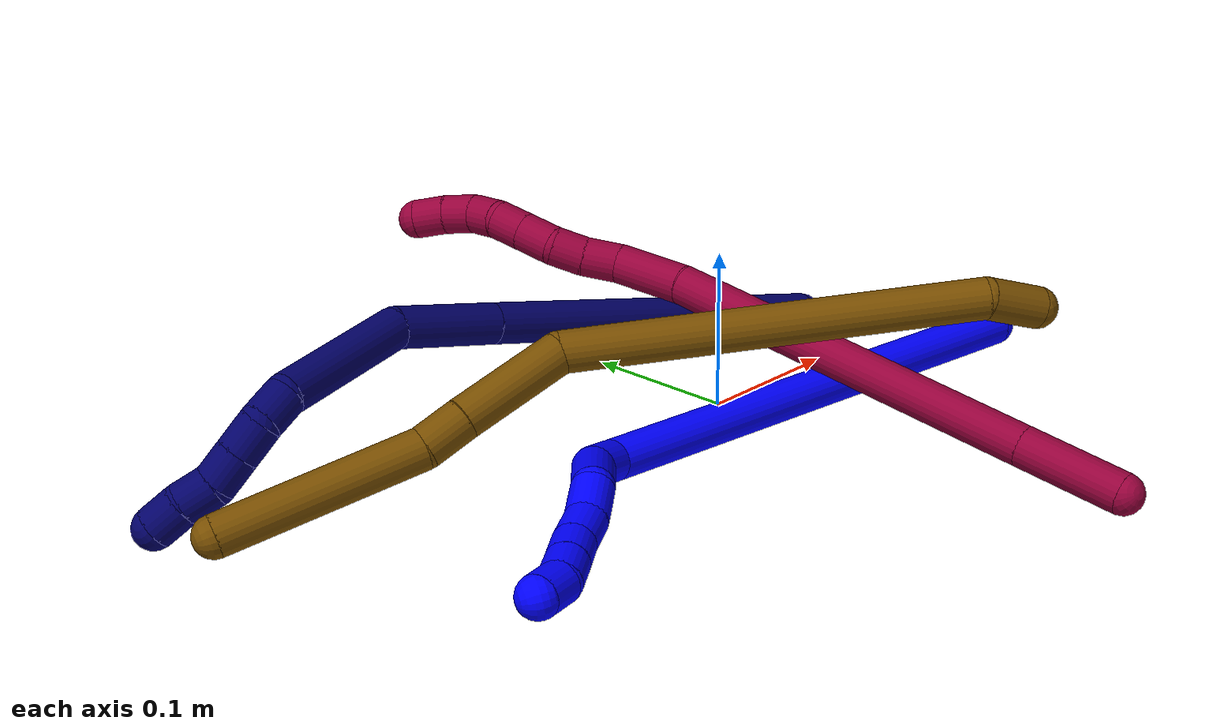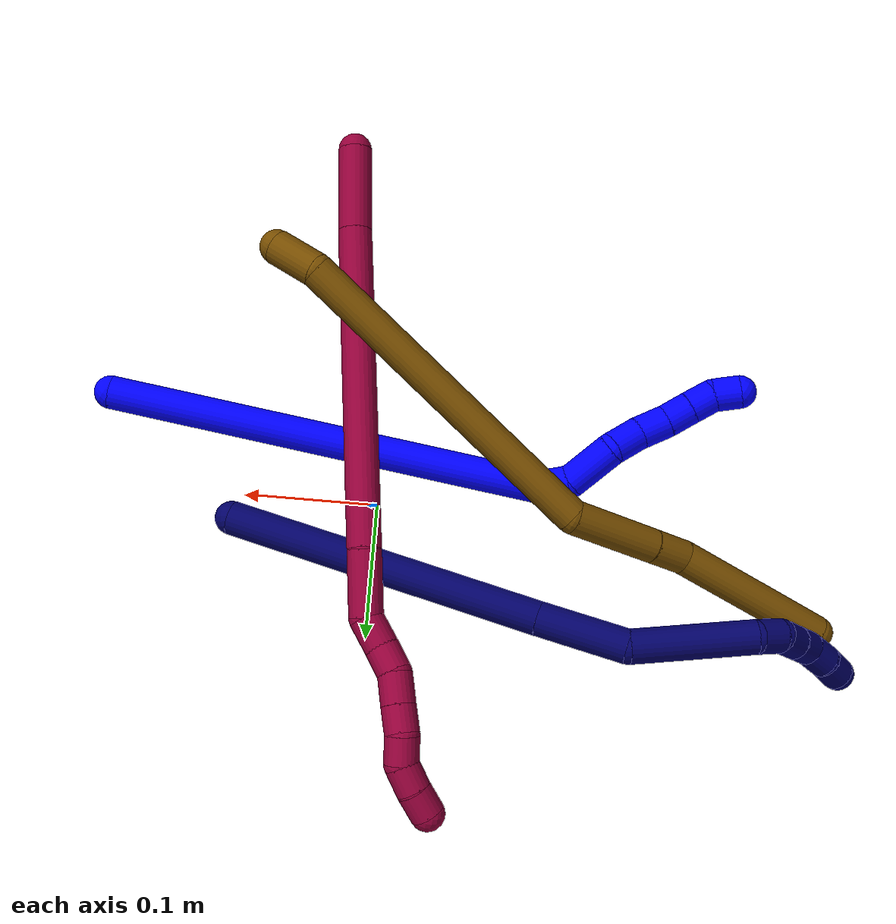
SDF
<sdf version="1.7">
 <world name="default">
  <model name="1">
   <static>0</static>
   <link name="1">
    <collision name="collision-cylinder-e_1_1_4">
     <pose>-0.064321 0.016195 0.150427 -0.107246 -0.401981 0.021871</pose>
     <geometry><cylinder><radius>0.0125</radius><length>0.328802</length></cylinder></geometry>
     <surface>
      <friction><ode><mu>1.16</mu><mu2>1.16</mu2><slip1>0</slip1><slip2>0</slip2></ode></friction>
      <contact><ode><kp>1e+06</kp><kd>1</kd><max_vel>0</max_vel><min_depth>0.001</min_depth></ode></contact>
     </surface>
    </collision>
    <visual name="visual-cylinder-e_1_1_4">
     <pose>-0.064321 0.016195 0.150427 -0.107246 -0.401981 0.021871</pose>
     <geometry><cylinder><radius>0.0125</radius><length>0.328802</length></cylinder></geometry>
     <material><ambient>0 0 1 1</ambient></material>
    </visual>
    <collision name="collision-cylinder-e_2_4_5">
     <pose>-0.13742 0.033699 0.308421 -0.171369 -0.852096 0.077927</pose>
     <geometry><cylinder><radius>0.0125</radius><length>0.023328</length></cylinder></geometry>
     <surface>
      <friction><ode><mu>1.16</mu><mu2>1.16</mu2><slip1>0</slip1><slip2>0</slip2></ode></friction>
      <contact><ode><kp>1e+06</kp><kd>1</kd><max_vel>0</max_vel><min_depth>0.001</min_depth></ode></contact>
     </surface>
    </collision>
    <visual name="visual-cylinder-e_2_4_5">
     <pose>-0.13742 0.033699 0.308421 -0.171369 -0.852096 0.077927</pose>
     <geometry><cylinder><radius>0.0125</radius><length>0.023328</length></cylinder></geometry>
     <material><ambient>0 0 1 1</ambient></material>
    </visual>
    <collision name="collision-cylinder-e_3_5_6">
     <pose>-0.16366 0.042329 0.320978 -0.972533 -1.1013 0.627671</pose>
     <geometry><cylinder><radius>0.0125</radius><length>0.039158</length></cylinder></geometry>
     <surface>
      <friction><ode><mu>1.16</mu><mu2>1.16</mu2><slip1>0</slip1><slip2>0</slip2></ode></friction>
      <contact><ode><kp>1e+06</kp><kd>1</kd><max_vel>0</max_vel><min_depth>0.001</min_depth></ode></contact>
     </surface>
    </collision>
    <visual name="visual-cylinder-e_3_5_6">
     <pose>-0.16366 0.042329 0.320978 -0.972533 -1.1013 0.627671</pose>
     <geometry><cylinder><radius>0.0125</radius><length>0.039158</length></cylinder></geometry>
     <material><ambient>0 0 1 1</ambient></material>
    </visual>
    <collision name="collision-cylinder-e_4_6_7">
     <pose>-0.188124 0.058375 0.331561 -1.00074 -0.594162 0.331711</pose>
     <geometry><cylinder><radius>0.0125</radius><length>0.025019</length></cylinder></geometry>
     <surface>
      <friction><ode><mu>1.16</mu><mu2>1.16</mu2><slip1>0</slip1><slip2>0</slip2></ode></friction>
      <contact><ode><kp>1e+06</kp><kd>1</kd><max_vel>0</max_vel><min_depth>0.001</min_depth></ode></contact>
     </surface>
    </collision>
    <visual name="visual-cylinder-e_4_6_7">
     <pose>-0.188124 0.058375 0.331561 -1.00074 -0.594162 0.331711</pose>
     <geometry><cylinder><radius>0.0125</radius><length>0.025019</length></cylinder></geometry>
     <material><ambient>0 0 1 1</ambient></material>
    </visual>
    <collision name="collision-cylinder-e_5_7_8">
     <pose>-0.203161 0.072715 0.343324 -0.738292 -0.766678 0.309555</pose>
     <geometry><cylinder><radius>0.0125</radius><length>0.023162</length></cylinder></geometry>
     <surface>
      <friction><ode><mu>1.16</mu><mu2>1.16</mu2><slip1>0</slip1><slip2>0</slip2></ode></friction>
      <contact><ode><kp>1e+06</kp><kd>1</kd><max_vel>0</max_vel><min_depth>0.001</min_depth></ode></contact>
     </surface>
    </collision>
    <visual name="visual-cylinder-e_5_7_8">
     <pose>-0.203161 0.072715 0.343324 -0.738292 -0.766678 0.309555</pose>
     <geometry><cylinder><radius>0.0125</radius><length>0.023162</length></cylinder></geometry>
     <material><ambient>0 0 1 1</ambient></material>
    </visual>
    <collision name="collision-cylinder-e_6_8_9">
     <pose>-0.218913 0.083216 0.353907 -0.836136 -0.864416 0.404271</pose>
     <geometry><cylinder><radius>0.0125</radius><length>0.020293</length></cylinder></geometry>
     <surface>
      <friction><ode><mu>1.16</mu><mu2>1.16</mu2><slip1>0</slip1><slip2>0</slip2></ode></friction>
      <contact><ode><kp>1e+06</kp><kd>1</kd><max_vel>0</max_vel><min_depth>0.001</min_depth></ode></contact>
     </surface>
    </collision>
    <visual name="visual-cylinder-e_6_8_9">
     <pose>-0.218913 0.083216 0.353907 -0.836136 -0.864416 0.404271</pose>
     <geometry><cylinder><radius>0.0125</radius><length>0.020293</length></cylinder></geometry>
     <material><ambient>0 0 1 1</ambient></material>
    </visual>
    <collision name="collision-cylinder-e_7_9_10">
     <pose>-0.234149 0.092933 0.362853 -0.817434 -0.848535 0.386389</pose>
     <geometry><cylinder><radius>0.0125</radius><length>0.020036</length></cylinder></geometry>
     <surface>
      <friction><ode><mu>1.16</mu><mu2>1.16</mu2><slip1>0</slip1><slip2>0</slip2></ode></friction>
      <contact><ode><kp>1e+06</kp><kd>1</kd><max_vel>0</max_vel><min_depth>0.001</min_depth></ode></contact>
     </surface>
    </collision>
    <visual name="visual-cylinder-e_7_9_10">
     <pose>-0.234149 0.092933 0.362853 -0.817434 -0.848535 0.386389</pose>
     <geometry><cylinder><radius>0.0125</radius><length>0.020036</length></cylinder></geometry>
     <material><ambient>0 0 1 1</ambient></material>
    </visual>
    <collision name="collision-cylinder-e_8_10_2">
     <pose>-0.248167 0.100206 0.374718 -0.321408 -0.699254 0.118069</pose>
     <geometry><cylinder><radius>0.0125</radius><length>0.020202</length></cylinder></geometry>
     <surface>
      <friction><ode><mu>1.16</mu><mu2>1.16</mu2><slip1>0</slip1><slip2>0</slip2></ode></friction>
      <contact><ode><kp>1e+06</kp><kd>1</kd><max_vel>0</max_vel><min_depth>0.001</min_depth></ode></contact>
     </surface>
    </collision>
    <visual name="visual-cylinder-e_8_10_2">
     <pose>-0.248167 0.100206 0.374718 -0.321408 -0.699254 0.118069</pose>
     <geometry><cylinder><radius>0.0125</radius><length>0.020202</length></cylinder></geometry>
     <material><ambient>0 0 1 1</ambient></material>
    </visual>
    <collision name="collision-sphere-2">
     <pose>-0.254668 0.102648 0.382053 0 -0 0</pose>
     <geometry><sphere><radius>0.0125</radius></sphere></geometry>
     <surface>
      <friction><ode><mu>1.16</mu><mu2>1.16</mu2><slip1>0</slip1><slip2>0</slip2></ode></friction>
      <contact><ode><kp>1e+06</kp><kd>1</kd><max_vel>0</max_vel><min_depth>0.001</min_depth></ode></contact>
     </surface>
    </collision>
    <visual name="visual-sphere-2">
     <pose>-0.254668 0.102648 0.382053 0 -0 0</pose>
     <geometry><sphere><radius>0.0125</radius></sphere></geometry>
     <material><ambient>0 0 1 1</ambient></material>
    </visual>
    <collision name="collision-sphere-10">
     <pose>-0.241665 0.097764 0.367383 0 -0 0</pose>
     <geometry><sphere><radius>0.0125</radius></sphere></geometry>
     <surface>
      <friction><ode><mu>1.16</mu><mu2>1.16</mu2><slip1>0</slip1><slip2>0</slip2></ode></friction>
      <contact><ode><kp>1e+06</kp><kd>1</kd><max_vel>0</max_vel><min_depth>0.001</min_depth></ode></contact>
     </surface>
    </collision>
    <visual name="visual-sphere-10">
     <pose>-0.241665 0.097764 0.367383 0 -0 0</pose>
     <geometry><sphere><radius>0.0125</radius></sphere></geometry>
     <material><ambient>0 0 1 1</ambient></material>
    </visual>
    <collision name="collision-sphere-9">
     <pose>-0.226632 0.088103 0.358322 0 -0 0</pose>
     <geometry><sphere><radius>0.0125</radius></sphere></geometry>
     <surface>
      <friction><ode><mu>1.16</mu><mu2>1.16</mu2><slip1>0</slip1><slip2>0</slip2></ode></friction>
      <contact><ode><kp>1e+06</kp><kd>1</kd><max_vel>0</max_vel><min_depth>0.001</min_depth></ode></contact>
     </surface>
    </collision>
    <visual name="visual-sphere-9">
     <pose>-0.226632 0.088103 0.358322 0 -0 0</pose>
     <geometry><sphere><radius>0.0125</radius></sphere></geometry>
     <material><ambient>0 0 1 1</ambient></material>
    </visual>
    <collision name="collision-sphere-4">
     <pose>-0.128641 0.03239 0.300854 0 -0 0</pose>
     <geometry><sphere><radius>0.0125</radius></sphere></geometry>
     <surface>
      <friction><ode><mu>1.16</mu><mu2>1.16</mu2><slip1>0</slip1><slip2>0</slip2></ode></friction>
      <contact><ode><kp>1e+06</kp><kd>1</kd><max_vel>0</max_vel><min_depth>0.001</min_depth></ode></contact>
     </surface>
    </collision>
    <visual name="visual-sphere-4">
     <pose>-0.128641 0.03239 0.300854 0 -0 0</pose>
     <geometry><sphere><radius>0.0125</radius></sphere></geometry>
     <material><ambient>0 0 1 1</ambient></material>
    </visual>
    <collision name="collision-sphere-1">
     <geometry><sphere><radius>0.0125</radius></sphere></geometry>
     <surface>
      <friction><ode><mu>1.16</mu><mu2>1.16</mu2><slip1>0</slip1><slip2>0</slip2></ode></friction>
      <contact><ode><kp>1e+06</kp><kd>1</kd><max_vel>0</max_vel><min_depth>0.001</min_depth></ode></contact>
     </surface>
    </collision>
    <visual name="visual-sphere-1">
     <geometry><sphere><radius>0.0125</radius></sphere></geometry>
     <material><ambient>0 0 1 1</ambient></material>
    </visual>
    <collision name="collision-sphere-8">
     <pose>-0.211195 0.078328 0.349493 0 -0 0</pose>
     <geometry><sphere><radius>0.0125</radius></sphere></geometry>
     <surface>
      <friction><ode><mu>1.16</mu><mu2>1.16</mu2><slip1>0</slip1><slip2>0</slip2></ode></friction>
      <contact><ode><kp>1e+06</kp><kd>1</kd><max_vel>0</max_vel><min_depth>0.001</min_depth></ode></contact>
     </surface>
    </collision>
    <visual name="visual-sphere-8">
     <pose>-0.211195 0.078328 0.349493 0 -0 0</pose>
     <geometry><sphere><radius>0.0125</radius></sphere></geometry>
     <material><ambient>0 0 1 1</ambient></material>
    </visual>
    <collision name="collision-sphere-5">
     <pose>-0.1462 0.035009 0.315989 0 -0 0</pose>
     <geometry><sphere><radius>0.0125</radius></sphere></geometry>
     <surface>
      <friction><ode><mu>1.16</mu><mu2>1.16</mu2><slip1>0</slip1><slip2>0</slip2></ode></friction>
      <contact><ode><kp>1e+06</kp><kd>1</kd><max_vel>0</max_vel><min_depth>0.001</min_depth></ode></contact>
     </surface>
    </collision>
    <visual name="visual-sphere-5">
     <pose>-0.1462 0.035009 0.315989 0 -0 0</pose>
     <geometry><sphere><radius>0.0125</radius></sphere></geometry>
     <material><ambient>0 0 1 1</ambient></material>
    </visual>
    <collision name="collision-sphere-6">
     <pose>-0.181121 0.049649 0.325967 0 -0 0</pose>
     <geometry><sphere><radius>0.0125</radius></sphere></geometry>
     <surface>
      <friction><ode><mu>1.16</mu><mu2>1.16</mu2><slip1>0</slip1><slip2>0</slip2></ode></friction>
      <contact><ode><kp>1e+06</kp><kd>1</kd><max_vel>0</max_vel><min_depth>0.001</min_depth></ode></contact>
     </surface>
    </collision>
    <visual name="visual-sphere-6">
     <pose>-0.181121 0.049649 0.325967 0 -0 0</pose>
     <geometry><sphere><radius>0.0125</radius></sphere></geometry>
     <material><ambient>0 0 1 1</ambient></material>
    </visual>
    <collision name="collision-sphere-7">
     <pose>-0.195127 0.067101 0.337155 0 -0 0</pose>
     <geometry><sphere><radius>0.0125</radius></sphere></geometry>
     <surface>
      <friction><ode><mu>1.16</mu><mu2>1.16</mu2><slip1>0</slip1><slip2>0</slip2></ode></friction>
      <contact><ode><kp>1e+06</kp><kd>1</kd><max_vel>0</max_vel><min_depth>0.001</min_depth></ode></contact>
     </surface>
    </collision>
    <visual name="visual-sphere-7">
     <pose>-0.195127 0.067101 0.337155 0 -0 0</pose>
     <geometry><sphere><radius>0.0125</radius></sphere></geometry>
     <material><ambient>0 0 1 1</ambient></material>
    </visual>
    <inertial>
     <pose>-0.108645 0.032977 0.214988 0 -0 0</pose>
     <mass>0.5</mass>
     <inertia>
      <ixx>0.002791</ixx>
      <ixy>0</ixy>
      <ixz>0</ixz>
      <iyy>0.003046</iyy>
      <iyz>0</iyz>
      <izz>0.000907</izz>
     </inertia>
    </inertial>
   </link>
   <pose>0.204604 -0.068253 0.011626 -1.75597 0.595034 0.94489</pose>
  </model>
  <model name="7">
   <static>0</static>
   <link name="7">
    <collision name="collision-cylinder-e_1_1_4">
     <pose>-0.051083 0.01867 0.106415 -0.173678 -0.441663 0.039083</pose>
     <geometry><cylinder><radius>0.0125</radius><length>0.239015</length></cylinder></geometry>
     <surface>
      <friction><ode><mu>1.16</mu><mu2>1.16</mu2><slip1>0</slip1><slip2>0</slip2></ode></friction>
      <contact><ode><kp>1e+06</kp><kd>1</kd><max_vel>0</max_vel><min_depth>0.001</min_depth></ode></contact>
     </surface>
    </collision>
    <visual name="visual-cylinder-e_1_1_4">
     <pose>-0.051083 0.01867 0.106415 -0.173678 -0.441663 0.039083</pose>
     <geometry><cylinder><radius>0.0125</radius><length>0.239015</length></cylinder></geometry>
     <material><ambient>0.003922 0 0.403922 1</ambient></material>
    </visual>
    <collision name="collision-cylinder-e_2_4_5">
     <pose>-0.116278 0.042094 0.242452 -0.159121 -0.439676 0.035627</pose>
     <geometry><cylinder><radius>0.0125</radius><length>0.06631</length></cylinder></geometry>
     <surface>
      <friction><ode><mu>1.16</mu><mu2>1.16</mu2><slip1>0</slip1><slip2>0</slip2></ode></friction>
      <contact><ode><kp>1e+06</kp><kd>1</kd><max_vel>0</max_vel><min_depth>0.001</min_depth></ode></contact>
     </surface>
    </collision>
    <visual name="visual-cylinder-e_2_4_5">
     <pose>-0.116278 0.042094 0.242452 -0.159121 -0.439676 0.035627</pose>
     <geometry><cylinder><radius>0.0125</radius><length>0.06631</length></cylinder></geometry>
     <material><ambient>0.003922 0 0.403922 1</ambient></material>
    </visual>
    <collision name="collision-cylinder-e_3_5_6">
     <pose>-0.154868 0.033728 0.308548 0.345286 -0.563263 -0.100818</pose>
     <geometry><cylinder><radius>0.0125</radius><length>0.091686</length></cylinder></geometry>
     <surface>
      <friction><ode><mu>1.16</mu><mu2>1.16</mu2><slip1>0</slip1><slip2>0</slip2></ode></friction>
      <contact><ode><kp>1e+06</kp><kd>1</kd><max_vel>0</max_vel><min_depth>0.001</min_depth></ode></contact>
     </surface>
    </collision>
    <visual name="visual-cylinder-e_3_5_6">
     <pose>-0.154868 0.033728 0.308548 0.345286 -0.563263 -0.100818</pose>
     <geometry><cylinder><radius>0.0125</radius><length>0.091686</length></cylinder></geometry>
     <material><ambient>0.003922 0 0.403922 1</ambient></material>
    </visual>
    <collision name="collision-cylinder-e_4_6_7">
     <pose>-0.187698 0.017153 0.350416 0.569632 -0.916414 -0.286822</pose>
     <geometry><cylinder><radius>0.0125</radius><length>0.021052</length></cylinder></geometry>
     <surface>
      <friction><ode><mu>1.16</mu><mu2>1.16</mu2><slip1>0</slip1><slip2>0</slip2></ode></friction>
      <contact><ode><kp>1e+06</kp><kd>1</kd><max_vel>0</max_vel><min_depth>0.001</min_depth></ode></contact>
     </surface>
    </collision>
    <visual name="visual-cylinder-e_4_6_7">
     <pose>-0.187698 0.017153 0.350416 0.569632 -0.916414 -0.286822</pose>
     <geometry><cylinder><radius>0.0125</radius><length>0.021052</length></cylinder></geometry>
     <material><ambient>0.003922 0 0.403922 1</ambient></material>
    </visual>
    <collision name="collision-cylinder-e_5_7_8">
     <pose>-0.206433 0.01247 0.357378 0.66518 -1.38142 -0.556204</pose>
     <geometry><cylinder><radius>0.0125</radius><length>0.021145</length></cylinder></geometry>
     <surface>
      <friction><ode><mu>1.16</mu><mu2>1.16</mu2><slip1>0</slip1><slip2>0</slip2></ode></friction>
      <contact><ode><kp>1e+06</kp><kd>1</kd><max_vel>0</max_vel><min_depth>0.001</min_depth></ode></contact>
     </surface>
    </collision>
    <visual name="visual-cylinder-e_5_7_8">
     <pose>-0.206433 0.01247 0.357378 0.66518 -1.38142 -0.556204</pose>
     <geometry><cylinder><radius>0.0125</radius><length>0.021145</length></cylinder></geometry>
     <material><ambient>0.003922 0 0.403922 1</ambient></material>
    </visual>
    <collision name="collision-cylinder-e_6_8_9">
     <pose>-0.226952 0.010039 0.360478 0.664689 -1.38082 -0.555462</pose>
     <geometry><cylinder><radius>0.0125</radius><length>0.020643</length></cylinder></geometry>
     <surface>
      <friction><ode><mu>1.16</mu><mu2>1.16</mu2><slip1>0</slip1><slip2>0</slip2></ode></friction>
      <contact><ode><kp>1e+06</kp><kd>1</kd><max_vel>0</max_vel><min_depth>0.001</min_depth></ode></contact>
     </surface>
    </collision>
    <visual name="visual-cylinder-e_6_8_9">
     <pose>-0.226952 0.010039 0.360478 0.664689 -1.38082 -0.555462</pose>
     <geometry><cylinder><radius>0.0125</radius><length>0.020643</length></cylinder></geometry>
     <material><ambient>0.003922 0 0.403922 1</ambient></material>
    </visual>
    <collision name="collision-cylinder-e_7_9_10">
     <pose>-0.24634 0.010704 0.365431 -0.499879 -1.17233 0.335825</pose>
     <geometry><cylinder><radius>0.0125</radius><length>0.020079</length></cylinder></geometry>
     <surface>
      <friction><ode><mu>1.16</mu><mu2>1.16</mu2><slip1>0</slip1><slip2>0</slip2></ode></friction>
      <contact><ode><kp>1e+06</kp><kd>1</kd><max_vel>0</max_vel><min_depth>0.001</min_depth></ode></contact>
     </surface>
    </collision>
    <visual name="visual-cylinder-e_7_9_10">
     <pose>-0.24634 0.010704 0.365431 -0.499879 -1.17233 0.335825</pose>
     <geometry><cylinder><radius>0.0125</radius><length>0.020079</length></cylinder></geometry>
     <material><ambient>0.003922 0 0.403922 1</ambient></material>
    </visual>
    <collision name="collision-cylinder-e_8_10_2">
     <pose>-0.265372 0.014041 0.370557 -0.710792 -1.34437 0.574409</pose>
     <geometry><cylinder><radius>0.0125</radius><length>0.02007</length></cylinder></geometry>
     <surface>
      <friction><ode><mu>1.16</mu><mu2>1.16</mu2><slip1>0</slip1><slip2>0</slip2></ode></friction>
      <contact><ode><kp>1e+06</kp><kd>1</kd><max_vel>0</max_vel><min_depth>0.001</min_depth></ode></contact>
     </surface>
    </collision>
    <visual name="visual-cylinder-e_8_10_2">
     <pose>-0.265372 0.014041 0.370557 -0.710792 -1.34437 0.574409</pose>
     <geometry><cylinder><radius>0.0125</radius><length>0.02007</length></cylinder></geometry>
     <material><ambient>0.003922 0 0.403922 1</ambient></material>
    </visual>
    <collision name="collision-sphere-2">
     <pose>-0.275151 0.015511 0.372264 0 -0 0</pose>
     <geometry><sphere><radius>0.0125</radius></sphere></geometry>
     <surface>
      <friction><ode><mu>1.16</mu><mu2>1.16</mu2><slip1>0</slip1><slip2>0</slip2></ode></friction>
      <contact><ode><kp>1e+06</kp><kd>1</kd><max_vel>0</max_vel><min_depth>0.001</min_depth></ode></contact>
     </surface>
    </collision>
    <visual name="visual-sphere-2">
     <pose>-0.275151 0.015511 0.372264 0 -0 0</pose>
     <geometry><sphere><radius>0.0125</radius></sphere></geometry>
     <material><ambient>0.003922 0 0.403922 1</ambient></material>
    </visual>
    <collision name="collision-sphere-10">
     <pose>-0.255593 0.012571 0.368849 0 -0 0</pose>
     <geometry><sphere><radius>0.0125</radius></sphere></geometry>
     <surface>
      <friction><ode><mu>1.16</mu><mu2>1.16</mu2><slip1>0</slip1><slip2>0</slip2></ode></friction>
      <contact><ode><kp>1e+06</kp><kd>1</kd><max_vel>0</max_vel><min_depth>0.001</min_depth></ode></contact>
     </surface>
    </collision>
    <visual name="visual-sphere-10">
     <pose>-0.255593 0.012571 0.368849 0 -0 0</pose>
     <geometry><sphere><radius>0.0125</radius></sphere></geometry>
     <material><ambient>0.003922 0 0.403922 1</ambient></material>
    </visual>
    <collision name="collision-sphere-9">
     <pose>-0.237087 0.008837 0.362012 0 -0 0</pose>
     <geometry><sphere><radius>0.0125</radius></sphere></geometry>
     <surface>
      <friction><ode><mu>1.16</mu><mu2>1.16</mu2><slip1>0</slip1><slip2>0</slip2></ode></friction>
      <contact><ode><kp>1e+06</kp><kd>1</kd><max_vel>0</max_vel><min_depth>0.001</min_depth></ode></contact>
     </surface>
    </collision>
    <visual name="visual-sphere-9">
     <pose>-0.237087 0.008837 0.362012 0 -0 0</pose>
     <geometry><sphere><radius>0.0125</radius></sphere></geometry>
     <material><ambient>0.003922 0 0.403922 1</ambient></material>
    </visual>
    <collision name="collision-sphere-4">
     <pose>-0.102166 0.03734 0.212829 0 -0 0</pose>
     <geometry><sphere><radius>0.0125</radius></sphere></geometry>
     <surface>
      <friction><ode><mu>1.16</mu><mu2>1.16</mu2><slip1>0</slip1><slip2>0</slip2></ode></friction>
      <contact><ode><kp>1e+06</kp><kd>1</kd><max_vel>0</max_vel><min_depth>0.001</min_depth></ode></contact>
     </surface>
    </collision>
    <visual name="visual-sphere-4">
     <pose>-0.102166 0.03734 0.212829 0 -0 0</pose>
     <geometry><sphere><radius>0.0125</radius></sphere></geometry>
     <material><ambient>0.003922 0 0.403922 1</ambient></material>
    </visual>
    <collision name="collision-sphere-1">
     <geometry><sphere><radius>0.0125</radius></sphere></geometry>
     <surface>
      <friction><ode><mu>1.16</mu><mu2>1.16</mu2><slip1>0</slip1><slip2>0</slip2></ode></friction>
      <contact><ode><kp>1e+06</kp><kd>1</kd><max_vel>0</max_vel><min_depth>0.001</min_depth></ode></contact>
     </surface>
    </collision>
    <visual name="visual-sphere-1">
     <geometry><sphere><radius>0.0125</radius></sphere></geometry>
     <material><ambient>0.003922 0 0.403922 1</ambient></material>
    </visual>
    <collision name="collision-sphere-8">
     <pose>-0.216816 0.011241 0.358944 0 -0 0</pose>
     <geometry><sphere><radius>0.0125</radius></sphere></geometry>
     <surface>
      <friction><ode><mu>1.16</mu><mu2>1.16</mu2><slip1>0</slip1><slip2>0</slip2></ode></friction>
      <contact><ode><kp>1e+06</kp><kd>1</kd><max_vel>0</max_vel><min_depth>0.001</min_depth></ode></contact>
     </surface>
    </collision>
    <visual name="visual-sphere-8">
     <pose>-0.216816 0.011241 0.358944 0 -0 0</pose>
     <geometry><sphere><radius>0.0125</radius></sphere></geometry>
     <material><ambient>0.003922 0 0.403922 1</ambient></material>
    </visual>
    <collision name="collision-sphere-5">
     <pose>-0.13039 0.046847 0.272075 0 -0 0</pose>
     <geometry><sphere><radius>0.0125</radius></sphere></geometry>
     <surface>
      <friction><ode><mu>1.16</mu><mu2>1.16</mu2><slip1>0</slip1><slip2>0</slip2></ode></friction>
      <contact><ode><kp>1e+06</kp><kd>1</kd><max_vel>0</max_vel><min_depth>0.001</min_depth></ode></contact>
     </surface>
    </collision>
    <visual name="visual-sphere-5">
     <pose>-0.13039 0.046847 0.272075 0 -0 0</pose>
     <geometry><sphere><radius>0.0125</radius></sphere></geometry>
     <material><ambient>0.003922 0 0.403922 1</ambient></material>
    </visual>
    <collision name="collision-sphere-6">
     <pose>-0.179346 0.020609 0.345021 0 -0 0</pose>
     <geometry><sphere><radius>0.0125</radius></sphere></geometry>
     <surface>
      <friction><ode><mu>1.16</mu><mu2>1.16</mu2><slip1>0</slip1><slip2>0</slip2></ode></friction>
      <contact><ode><kp>1e+06</kp><kd>1</kd><max_vel>0</max_vel><min_depth>0.001</min_depth></ode></contact>
     </surface>
    </collision>
    <visual name="visual-sphere-6">
     <pose>-0.179346 0.020609 0.345021 0 -0 0</pose>
     <geometry><sphere><radius>0.0125</radius></sphere></geometry>
     <material><ambient>0.003922 0 0.403922 1</ambient></material>
    </visual>
    <collision name="collision-sphere-7">
     <pose>-0.196049 0.013698 0.355812 0 -0 0</pose>
     <geometry><sphere><radius>0.0125</radius></sphere></geometry>
     <surface>
      <friction><ode><mu>1.16</mu><mu2>1.16</mu2><slip1>0</slip1><slip2>0</slip2></ode></friction>
      <contact><ode><kp>1e+06</kp><kd>1</kd><max_vel>0</max_vel><min_depth>0.001</min_depth></ode></contact>
     </surface>
    </collision>
    <visual name="visual-sphere-7">
     <pose>-0.196049 0.013698 0.355812 0 -0 0</pose>
     <geometry><sphere><radius>0.0125</radius></sphere></geometry>
     <material><ambient>0.003922 0 0.403922 1</ambient></material>
    </visual>
    <inertial>
     <pose>-0.114786 0.02335 0.213901 0 -0 0</pose>
     <mass>0.5</mass>
     <inertia>
      <ixx>0.001134</ixx>
      <ixy>0</ixy>
      <ixz>0</ixz>
      <iyy>0.001268</iyy>
      <iyz>0</iyz>
      <izz>0.000411</izz>
     </inertia>
    </inertial>
   </link>
   <pose>0.103738 0.017442 0.027596 0.573659 -0.894207 -0.588901</pose>
  </model>
  <model name="8">
   <static>0</static>
   <link name="8">
    <collision name="collision-cylinder-e_1_1_4">
     <pose>0.002523 0.0195 0.025235 -0.657889 0.078957 -0.026964</pose>
     <geometry><cylinder><radius>0.0125</radius><length>0.063983</length></cylinder></geometry>
     <surface>
      <friction><ode><mu>1.16</mu><mu2>1.16</mu2><slip1>0</slip1><slip2>0</slip2></ode></friction>
      <contact><ode><kp>1e+06</kp><kd>1</kd><max_vel>0</max_vel><min_depth>0.001</min_depth></ode></contact>
     </surface>
    </collision>
    <visual name="visual-cylinder-e_1_1_4">
     <pose>0.002523 0.0195 0.025235 -0.657889 0.078957 -0.026964</pose>
     <geometry><cylinder><radius>0.0125</radius><length>0.063983</length></cylinder></geometry>
     <material><ambient>0.584314 0 0.227451 1</ambient></material>
    </visual>
    <collision name="collision-cylinder-e_2_4_5">
     <pose>0.017111 0.114642 0.142726 -0.686769 0.100786 -0.036063</pose>
     <geometry><cylinder><radius>0.0125</radius><length>0.239817</length></cylinder></geometry>
     <surface>
      <friction><ode><mu>1.16</mu><mu2>1.16</mu2><slip1>0</slip1><slip2>0</slip2></ode></friction>
      <contact><ode><kp>1e+06</kp><kd>1</kd><max_vel>0</max_vel><min_depth>0.001</min_depth></ode></contact>
     </surface>
    </collision>
    <visual name="visual-cylinder-e_2_4_5">
     <pose>0.017111 0.114642 0.142726 -0.686769 0.100786 -0.036063</pose>
     <geometry><cylinder><radius>0.0125</radius><length>0.239817</length></cylinder></geometry>
     <material><ambient>0.584314 0 0.227451 1</ambient></material>
    </visual>
    <collision name="collision-cylinder-e_3_5_6">
     <pose>0.032481 0.203243 0.255244 -0.56901 0.136539 -0.039986</pose>
     <geometry><cylinder><radius>0.0125</radius><length>0.04856</length></cylinder></geometry>
     <surface>
      <friction><ode><mu>1.16</mu><mu2>1.16</mu2><slip1>0</slip1><slip2>0</slip2></ode></friction>
      <contact><ode><kp>1e+06</kp><kd>1</kd><max_vel>0</max_vel><min_depth>0.001</min_depth></ode></contact>
     </surface>
    </collision>
    <visual name="visual-cylinder-e_3_5_6">
     <pose>0.032481 0.203243 0.255244 -0.56901 0.136539 -0.039986</pose>
     <geometry><cylinder><radius>0.0125</radius><length>0.04856</length></cylinder></geometry>
     <material><ambient>0.584314 0 0.227451 1</ambient></material>
    </visual>
    <collision name="collision-cylinder-e_4_6_7">
     <pose>0.041794 0.223906 0.282255 -0.851435 0.530625 -0.245184</pose>
     <geometry><cylinder><radius>0.0125</radius><length>0.023745</length></cylinder></geometry>
     <surface>
      <friction><ode><mu>1.16</mu><mu2>1.16</mu2><slip1>0</slip1><slip2>0</slip2></ode></friction>
      <contact><ode><kp>1e+06</kp><kd>1</kd><max_vel>0</max_vel><min_depth>0.001</min_depth></ode></contact>
     </surface>
    </collision>
    <visual name="visual-cylinder-e_4_6_7">
     <pose>0.041794 0.223906 0.282255 -0.851435 0.530625 -0.245184</pose>
     <geometry><cylinder><radius>0.0125</radius><length>0.023745</length></cylinder></geometry>
     <material><ambient>0.584314 0 0.227451 1</ambient></material>
    </visual>
    <collision name="collision-cylinder-e_5_7_8">
     <pose>0.052253 0.239336 0.294113 -0.986512 0.447855 -0.243651</pose>
     <geometry><cylinder><radius>0.0125</radius><length>0.020556</length></cylinder></geometry>
     <surface>
      <friction><ode><mu>1.16</mu><mu2>1.16</mu2><slip1>0</slip1><slip2>0</slip2></ode></friction>
      <contact><ode><kp>1e+06</kp><kd>1</kd><max_vel>0</max_vel><min_depth>0.001</min_depth></ode></contact>
     </surface>
    </collision>
    <visual name="visual-cylinder-e_5_7_8">
     <pose>0.052253 0.239336 0.294113 -0.986512 0.447855 -0.243651</pose>
     <geometry><cylinder><radius>0.0125</radius><length>0.020556</length></cylinder></geometry>
     <material><ambient>0.584314 0 0.227451 1</ambient></material>
    </visual>
    <collision name="collision-cylinder-e_6_8_9">
     <pose>0.058491 0.2548 0.307392 -0.758203 0.157474 -0.062842</pose>
     <geometry><cylinder><radius>0.0125</radius><length>0.022784</length></cylinder></geometry>
     <surface>
      <friction><ode><mu>1.16</mu><mu2>1.16</mu2><slip1>0</slip1><slip2>0</slip2></ode></friction>
      <contact><ode><kp>1e+06</kp><kd>1</kd><max_vel>0</max_vel><min_depth>0.001</min_depth></ode></contact>
     </surface>
    </collision>
    <visual name="visual-cylinder-e_6_8_9">
     <pose>0.058491 0.2548 0.307392 -0.758203 0.157474 -0.062842</pose>
     <geometry><cylinder><radius>0.0125</radius><length>0.022784</length></cylinder></geometry>
     <material><ambient>0.584314 0 0.227451 1</ambient></material>
    </visual>
    <collision name="collision-cylinder-e_7_9_10">
     <pose>0.062034 0.269536 0.322697 -0.775787 0.174035 -0.07126</pose>
     <geometry><cylinder><radius>0.0125</radius><length>0.020297</length></cylinder></geometry>
     <surface>
      <friction><ode><mu>1.16</mu><mu2>1.16</mu2><slip1>0</slip1><slip2>0</slip2></ode></friction>
      <contact><ode><kp>1e+06</kp><kd>1</kd><max_vel>0</max_vel><min_depth>0.001</min_depth></ode></contact>
     </surface>
    </collision>
    <visual name="visual-cylinder-e_7_9_10">
     <pose>0.062034 0.269536 0.322697 -0.775787 0.174035 -0.07126</pose>
     <geometry><cylinder><radius>0.0125</radius><length>0.020297</length></cylinder></geometry>
     <material><ambient>0.584314 0 0.227451 1</ambient></material>
    </visual>
    <collision name="collision-cylinder-e_8_10_11">
     <pose>0.064897 0.28092 0.338874 -0.451439 0.109529 -0.025175</pose>
     <geometry><cylinder><radius>0.0125</radius><length>0.020218</length></cylinder></geometry>
     <surface>
      <friction><ode><mu>1.16</mu><mu2>1.16</mu2><slip1>0</slip1><slip2>0</slip2></ode></friction>
      <contact><ode><kp>1e+06</kp><kd>1</kd><max_vel>0</max_vel><min_depth>0.001</min_depth></ode></contact>
     </surface>
    </collision>
    <visual name="visual-cylinder-e_8_10_11">
     <pose>0.064897 0.28092 0.338874 -0.451439 0.109529 -0.025175</pose>
     <geometry><cylinder><radius>0.0125</radius><length>0.020218</length></cylinder></geometry>
     <material><ambient>0.584314 0 0.227451 1</ambient></material>
    </visual>
    <collision name="collision-cylinder-e_9_11_12">
     <pose>0.07138 0.289726 0.355107 -0.551354 0.567228 -0.16453</pose>
     <geometry><cylinder><radius>0.0125</radius><length>0.020021</length></cylinder></geometry>
     <surface>
      <friction><ode><mu>1.16</mu><mu2>1.16</mu2><slip1>0</slip1><slip2>0</slip2></ode></friction>
      <contact><ode><kp>1e+06</kp><kd>1</kd><max_vel>0</max_vel><min_depth>0.001</min_depth></ode></contact>
     </surface>
    </collision>
    <visual name="visual-cylinder-e_9_11_12">
     <pose>0.07138 0.289726 0.355107 -0.551354 0.567228 -0.16453</pose>
     <geometry><cylinder><radius>0.0125</radius><length>0.020021</length></cylinder></geometry>
     <material><ambient>0.584314 0 0.227451 1</ambient></material>
    </visual>
    <collision name="collision-cylinder-e_10_12_2">
     <pose>0.083018 0.297503 0.369353 -0.443954 0.675567 -0.158219</pose>
     <geometry><cylinder><radius>0.0125</radius><length>0.020018</length></cylinder></geometry>
     <surface>
      <friction><ode><mu>1.16</mu><mu2>1.16</mu2><slip1>0</slip1><slip2>0</slip2></ode></friction>
      <contact><ode><kp>1e+06</kp><kd>1</kd><max_vel>0</max_vel><min_depth>0.001</min_depth></ode></contact>
     </surface>
    </collision>
    <visual name="visual-cylinder-e_10_12_2">
     <pose>0.083018 0.297503 0.369353 -0.443954 0.675567 -0.158219</pose>
     <geometry><cylinder><radius>0.0125</radius><length>0.020018</length></cylinder></geometry>
     <material><ambient>0.584314 0 0.227451 1</ambient></material>
    </visual>
    <collision name="collision-sphere-2">
     <pose>0.089277 0.300858 0.376406 0 -0 0</pose>
     <geometry><sphere><radius>0.0125</radius></sphere></geometry>
     <surface>
      <friction><ode><mu>1.16</mu><mu2>1.16</mu2><slip1>0</slip1><slip2>0</slip2></ode></friction>
      <contact><ode><kp>1e+06</kp><kd>1</kd><max_vel>0</max_vel><min_depth>0.001</min_depth></ode></contact>
     </surface>
    </collision>
    <visual name="visual-sphere-2">
     <pose>0.089277 0.300858 0.376406 0 -0 0</pose>
     <geometry><sphere><radius>0.0125</radius></sphere></geometry>
     <material><ambient>0.584314 0 0.227451 1</ambient></material>
    </visual>
    <collision name="collision-sphere-12">
     <pose>0.076759 0.294149 0.362299 0 -0 0</pose>
     <geometry><sphere><radius>0.0125</radius></sphere></geometry>
     <surface>
      <friction><ode><mu>1.16</mu><mu2>1.16</mu2><slip1>0</slip1><slip2>0</slip2></ode></friction>
      <contact><ode><kp>1e+06</kp><kd>1</kd><max_vel>0</max_vel><min_depth>0.001</min_depth></ode></contact>
     </surface>
    </collision>
    <visual name="visual-sphere-12">
     <pose>0.076759 0.294149 0.362299 0 -0 0</pose>
     <geometry><sphere><radius>0.0125</radius></sphere></geometry>
     <material><ambient>0.584314 0 0.227451 1</ambient></material>
    </visual>
    <collision name="collision-sphere-11">
     <pose>0.066002 0.285303 0.347915 0 -0 0</pose>
     <geometry><sphere><radius>0.0125</radius></sphere></geometry>
     <surface>
      <friction><ode><mu>1.16</mu><mu2>1.16</mu2><slip1>0</slip1><slip2>0</slip2></ode></friction>
      <contact><ode><kp>1e+06</kp><kd>1</kd><max_vel>0</max_vel><min_depth>0.001</min_depth></ode></contact>
     </surface>
    </collision>
    <visual name="visual-sphere-11">
     <pose>0.066002 0.285303 0.347915 0 -0 0</pose>
     <geometry><sphere><radius>0.0125</radius></sphere></geometry>
     <material><ambient>0.584314 0 0.227451 1</ambient></material>
    </visual>
    <collision name="collision-sphere-10">
     <pose>0.063792 0.276536 0.329832 0 -0 0</pose>
     <geometry><sphere><radius>0.0125</radius></sphere></geometry>
     <surface>
      <friction><ode><mu>1.16</mu><mu2>1.16</mu2><slip1>0</slip1><slip2>0</slip2></ode></friction>
      <contact><ode><kp>1e+06</kp><kd>1</kd><max_vel>0</max_vel><min_depth>0.001</min_depth></ode></contact>
     </surface>
    </collision>
    <visual name="visual-sphere-10">
     <pose>0.063792 0.276536 0.329832 0 -0 0</pose>
     <geometry><sphere><radius>0.0125</radius></sphere></geometry>
     <material><ambient>0.584314 0 0.227451 1</ambient></material>
    </visual>
    <collision name="collision-sphere-9">
     <pose>0.060277 0.262537 0.315561 0 -0 0</pose>
     <geometry><sphere><radius>0.0125</radius></sphere></geometry>
     <surface>
      <friction><ode><mu>1.16</mu><mu2>1.16</mu2><slip1>0</slip1><slip2>0</slip2></ode></friction>
      <contact><ode><kp>1e+06</kp><kd>1</kd><max_vel>0</max_vel><min_depth>0.001</min_depth></ode></contact>
     </surface>
    </collision>
    <visual name="visual-sphere-9">
     <pose>0.060277 0.262537 0.315561 0 -0 0</pose>
     <geometry><sphere><radius>0.0125</radius></sphere></geometry>
     <material><ambient>0.584314 0 0.227451 1</ambient></material>
    </visual>
    <collision name="collision-sphere-4">
     <pose>0.005047 0.039 0.050471 0 -0 0</pose>
     <geometry><sphere><radius>0.0125</radius></sphere></geometry>
     <surface>
      <friction><ode><mu>1.16</mu><mu2>1.16</mu2><slip1>0</slip1><slip2>0</slip2></ode></friction>
      <contact><ode><kp>1e+06</kp><kd>1</kd><max_vel>0</max_vel><min_depth>0.001</min_depth></ode></contact>
     </surface>
    </collision>
    <visual name="visual-sphere-4">
     <pose>0.005047 0.039 0.050471 0 -0 0</pose>
     <geometry><sphere><radius>0.0125</radius></sphere></geometry>
     <material><ambient>0.584314 0 0.227451 1</ambient></material>
    </visual>
    <collision name="collision-sphere-1">
     <geometry><sphere><radius>0.0125</radius></sphere></geometry>
     <surface>
      <friction><ode><mu>1.16</mu><mu2>1.16</mu2><slip1>0</slip1><slip2>0</slip2></ode></friction>
      <contact><ode><kp>1e+06</kp><kd>1</kd><max_vel>0</max_vel><min_depth>0.001</min_depth></ode></contact>
     </surface>
    </collision>
    <visual name="visual-sphere-1">
     <geometry><sphere><radius>0.0125</radius></sphere></geometry>
     <material><ambient>0.584314 0 0.227451 1</ambient></material>
    </visual>
    <collision name="collision-sphere-8">
     <pose>0.056704 0.247064 0.299223 0 -0 0</pose>
     <geometry><sphere><radius>0.0125</radius></sphere></geometry>
     <surface>
      <friction><ode><mu>1.16</mu><mu2>1.16</mu2><slip1>0</slip1><slip2>0</slip2></ode></friction>
      <contact><ode><kp>1e+06</kp><kd>1</kd><max_vel>0</max_vel><min_depth>0.001</min_depth></ode></contact>
     </surface>
    </collision>
    <visual name="visual-sphere-8">
     <pose>0.056704 0.247064 0.299223 0 -0 0</pose>
     <geometry><sphere><radius>0.0125</radius></sphere></geometry>
     <material><ambient>0.584314 0 0.227451 1</ambient></material>
    </visual>
    <collision name="collision-sphere-5">
     <pose>0.029176 0.190283 0.23498 0 -0 0</pose>
     <geometry><sphere><radius>0.0125</radius></sphere></geometry>
     <surface>
      <friction><ode><mu>1.16</mu><mu2>1.16</mu2><slip1>0</slip1><slip2>0</slip2></ode></friction>
      <contact><ode><kp>1e+06</kp><kd>1</kd><max_vel>0</max_vel><min_depth>0.001</min_depth></ode></contact>
     </surface>
    </collision>
    <visual name="visual-sphere-5">
     <pose>0.029176 0.190283 0.23498 0 -0 0</pose>
     <geometry><sphere><radius>0.0125</radius></sphere></geometry>
     <material><ambient>0.584314 0 0.227451 1</ambient></material>
    </visual>
    <collision name="collision-sphere-6">
     <pose>0.035786 0.216203 0.275508 0 -0 0</pose>
     <geometry><sphere><radius>0.0125</radius></sphere></geometry>
     <surface>
      <friction><ode><mu>1.16</mu><mu2>1.16</mu2><slip1>0</slip1><slip2>0</slip2></ode></friction>
      <contact><ode><kp>1e+06</kp><kd>1</kd><max_vel>0</max_vel><min_depth>0.001</min_depth></ode></contact>
     </surface>
    </collision>
    <visual name="visual-sphere-6">
     <pose>0.035786 0.216203 0.275508 0 -0 0</pose>
     <geometry><sphere><radius>0.0125</radius></sphere></geometry>
     <material><ambient>0.584314 0 0.227451 1</ambient></material>
    </visual>
    <collision name="collision-sphere-7">
     <pose>0.047803 0.231609 0.289003 0 -0 0</pose>
     <geometry><sphere><radius>0.0125</radius></sphere></geometry>
     <surface>
      <friction><ode><mu>1.16</mu><mu2>1.16</mu2><slip1>0</slip1><slip2>0</slip2></ode></friction>
      <contact><ode><kp>1e+06</kp><kd>1</kd><max_vel>0</max_vel><min_depth>0.001</min_depth></ode></contact>
     </surface>
    </collision>
    <visual name="visual-sphere-7">
     <pose>0.047803 0.231609 0.289003 0 -0 0</pose>
     <geometry><sphere><radius>0.0125</radius></sphere></geometry>
     <material><ambient>0.584314 0 0.227451 1</ambient></material>
    </visual>
    <inertial>
     <pose>0.029807 0.155117 0.191787 0 -0 0</pose>
     <mass>0.5</mass>
     <inertia>
      <ixx>0.001161</ixx>
      <ixy>0</ixy>
      <ixz>0</ixz>
      <iyy>0.000915</iyy>
      <iyz>0</iyz>
      <izz>-0.000853</izz>
     </inertia>
    </inertial>
   </link>
   <pose>0.038072 -0.264835 0.012476 2.00575 0.351552 3.08634</pose>
  </model>
  <model name="12">
   <static>0</static>
   <link name="12">
    <collision name="collision-cylinder-e_1_1_4">
     <pose>-0.006588 0.005214 0.015503 -0.324431 -0.382885 0.063416</pose>
     <geometry><cylinder><radius>0.0125</radius><length>0.035266</length></cylinder></geometry>
     <surface>
      <friction><ode><mu>1.16</mu><mu2>1.16</mu2><slip1>0</slip1><slip2>0</slip2></ode></friction>
      <contact><ode><kp>1e+06</kp><kd>1</kd><max_vel>0</max_vel><min_depth>0.001</min_depth></ode></contact>
     </surface>
    </collision>
    <visual name="visual-cylinder-e_1_1_4">
     <pose>-0.006588 0.005214 0.015503 -0.324431 -0.382885 0.063416</pose>
     <geometry><cylinder><radius>0.0125</radius><length>0.035266</length></cylinder></geometry>
     <material><ambient>0.466667 0.301961 0 1</ambient></material>
    </visual>
    <collision name="collision-cylinder-e_2_4_5">
     <pose>-0.0488 -0.002388 0.149062 0.108136 -0.291454 -0.015886</pose>
     <geometry><cylinder><radius>0.0125</radius><length>0.247956</length></cylinder></geometry>
     <surface>
      <friction><ode><mu>1.16</mu><mu2>1.16</mu2><slip1>0</slip1><slip2>0</slip2></ode></friction>
      <contact><ode><kp>1e+06</kp><kd>1</kd><max_vel>0</max_vel><min_depth>0.001</min_depth></ode></contact>
     </surface>
    </collision>
    <visual name="visual-cylinder-e_2_4_5">
     <pose>-0.0488 -0.002388 0.149062 0.108136 -0.291454 -0.015886</pose>
     <geometry><cylinder><radius>0.0125</radius><length>0.247956</length></cylinder></geometry>
     <material><ambient>0.466667 0.301961 0 1</ambient></material>
    </visual>
    <collision name="collision-cylinder-e_3_5_6">
     <pose>-0.076904 -0.017359 0.300028 0.065374 0.224181 0.007361</pose>
     <geometry><cylinder><radius>0.0125</radius><length>0.067656</length></cylinder></geometry>
     <surface>
      <friction><ode><mu>1.16</mu><mu2>1.16</mu2><slip1>0</slip1><slip2>0</slip2></ode></friction>
      <contact><ode><kp>1e+06</kp><kd>1</kd><max_vel>0</max_vel><min_depth>0.001</min_depth></ode></contact>
     </surface>
    </collision>
    <visual name="visual-cylinder-e_3_5_6">
     <pose>-0.076904 -0.017359 0.300028 0.065374 0.224181 0.007361</pose>
     <geometry><cylinder><radius>0.0125</radius><length>0.067656</length></cylinder></geometry>
     <material><ambient>0.466667 0.301961 0 1</ambient></material>
    </visual>
    <collision name="collision-cylinder-e_4_6_7">
     <pose>-0.065973 -0.020861 0.346162 0.101579 0.251209 0.012837</pose>
     <geometry><cylinder><radius>0.0125</radius><length>0.027445</length></cylinder></geometry>
     <surface>
      <friction><ode><mu>1.16</mu><mu2>1.16</mu2><slip1>0</slip1><slip2>0</slip2></ode></friction>
      <contact><ode><kp>1e+06</kp><kd>1</kd><max_vel>0</max_vel><min_depth>0.001</min_depth></ode></contact>
     </surface>
    </collision>
    <visual name="visual-cylinder-e_4_6_7">
     <pose>-0.065973 -0.020861 0.346162 0.101579 0.251209 0.012837</pose>
     <geometry><cylinder><radius>0.0125</radius><length>0.027445</length></cylinder></geometry>
     <material><ambient>0.466667 0.301961 0 1</ambient></material>
    </visual>
    <collision name="collision-cylinder-e_5_7_2">
     <pose>-0.061757 -0.025699 0.420119 0.057402 0.013221 0.00038</pose>
     <geometry><cylinder><radius>0.0125</radius><length>0.121678</length></cylinder></geometry>
     <surface>
      <friction><ode><mu>1.16</mu><mu2>1.16</mu2><slip1>0</slip1><slip2>0</slip2></ode></friction>
      <contact><ode><kp>1e+06</kp><kd>1</kd><max_vel>0</max_vel><min_depth>0.001</min_depth></ode></contact>
     </surface>
    </collision>
    <visual name="visual-cylinder-e_5_7_2">
     <pose>-0.061757 -0.025699 0.420119 0.057402 0.013221 0.00038</pose>
     <geometry><cylinder><radius>0.0125</radius><length>0.121678</length></cylinder></geometry>
     <material><ambient>0.466667 0.301961 0 1</ambient></material>
    </visual>
    <collision name="collision-sphere-2">
     <pose>-0.060953 -0.029189 0.480852 0 -0 0</pose>
     <geometry><sphere><radius>0.0125</radius></sphere></geometry>
     <surface>
      <friction><ode><mu>1.16</mu><mu2>1.16</mu2><slip1>0</slip1><slip2>0</slip2></ode></friction>
      <contact><ode><kp>1e+06</kp><kd>1</kd><max_vel>0</max_vel><min_depth>0.001</min_depth></ode></contact>
     </surface>
    </collision>
    <visual name="visual-sphere-2">
     <pose>-0.060953 -0.029189 0.480852 0 -0 0</pose>
     <geometry><sphere><radius>0.0125</radius></sphere></geometry>
     <material><ambient>0.466667 0.301961 0 1</ambient></material>
    </visual>
    <collision name="collision-sphere-7">
     <pose>-0.062562 -0.022209 0.359385 0 -0 0</pose>
     <geometry><sphere><radius>0.0125</radius></sphere></geometry>
     <surface>
      <friction><ode><mu>1.16</mu><mu2>1.16</mu2><slip1>0</slip1><slip2>0</slip2></ode></friction>
      <contact><ode><kp>1e+06</kp><kd>1</kd><max_vel>0</max_vel><min_depth>0.001</min_depth></ode></contact>
     </surface>
    </collision>
    <visual name="visual-sphere-7">
     <pose>-0.062562 -0.022209 0.359385 0 -0 0</pose>
     <geometry><sphere><radius>0.0125</radius></sphere></geometry>
     <material><ambient>0.466667 0.301961 0 1</ambient></material>
    </visual>
    <collision name="collision-sphere-6">
     <pose>-0.069384 -0.019514 0.332939 0 -0 0</pose>
     <geometry><sphere><radius>0.0125</radius></sphere></geometry>
     <surface>
      <friction><ode><mu>1.16</mu><mu2>1.16</mu2><slip1>0</slip1><slip2>0</slip2></ode></friction>
      <contact><ode><kp>1e+06</kp><kd>1</kd><max_vel>0</max_vel><min_depth>0.001</min_depth></ode></contact>
     </surface>
    </collision>
    <visual name="visual-sphere-6">
     <pose>-0.069384 -0.019514 0.332939 0 -0 0</pose>
     <geometry><sphere><radius>0.0125</radius></sphere></geometry>
     <material><ambient>0.466667 0.301961 0 1</ambient></material>
    </visual>
    <collision name="collision-sphere-5">
     <pose>-0.084424 -0.015204 0.267117 0 -0 0</pose>
     <geometry><sphere><radius>0.0125</radius></sphere></geometry>
     <surface>
      <friction><ode><mu>1.16</mu><mu2>1.16</mu2><slip1>0</slip1><slip2>0</slip2></ode></friction>
      <contact><ode><kp>1e+06</kp><kd>1</kd><max_vel>0</max_vel><min_depth>0.001</min_depth></ode></contact>
     </surface>
    </collision>
    <visual name="visual-sphere-5">
     <pose>-0.084424 -0.015204 0.267117 0 -0 0</pose>
     <geometry><sphere><radius>0.0125</radius></sphere></geometry>
     <material><ambient>0.466667 0.301961 0 1</ambient></material>
    </visual>
    <collision name="collision-sphere-1">
     <geometry><sphere><radius>0.0125</radius></sphere></geometry>
     <surface>
      <friction><ode><mu>1.16</mu><mu2>1.16</mu2><slip1>0</slip1><slip2>0</slip2></ode></friction>
      <contact><ode><kp>1e+06</kp><kd>1</kd><max_vel>0</max_vel><min_depth>0.001</min_depth></ode></contact>
     </surface>
    </collision>
    <visual name="visual-sphere-1">
     <geometry><sphere><radius>0.0125</radius></sphere></geometry>
     <material><ambient>0.466667 0.301961 0 1</ambient></material>
    </visual>
    <collision name="collision-sphere-4">
     <pose>-0.013175 0.010428 0.031006 0 -0 0</pose>
     <geometry><sphere><radius>0.0125</radius></sphere></geometry>
     <surface>
      <friction><ode><mu>1.16</mu><mu2>1.16</mu2><slip1>0</slip1><slip2>0</slip2></ode></friction>
      <contact><ode><kp>1e+06</kp><kd>1</kd><max_vel>0</max_vel><min_depth>0.001</min_depth></ode></contact>
     </surface>
    </collision>
    <visual name="visual-sphere-4">
     <pose>-0.013175 0.010428 0.031006 0 -0 0</pose>
     <geometry><sphere><radius>0.0125</radius></sphere></geometry>
     <material><ambient>0.466667 0.301961 0 1</ambient></material>
    </visual>
    <inertial>
     <pose>-0.053721 -0.010565 0.236851 0 -0 0</pose>
     <mass>0.5</mass>
     <inertia>
      <ixx>0.001392</ixx>
      <ixy>0</ixy>
      <ixz>0</ixz>
      <iyy>0.001443</iyy>
      <iyz>0</iyz>
      <izz>0.00054</izz>
     </inertia>
    </inertial>
   </link>
   <pose>0.079425 -0.175311 0.088462 1.83404 0.713791 -1.78782</pose>
  </model>
 </world>
</sdf>
